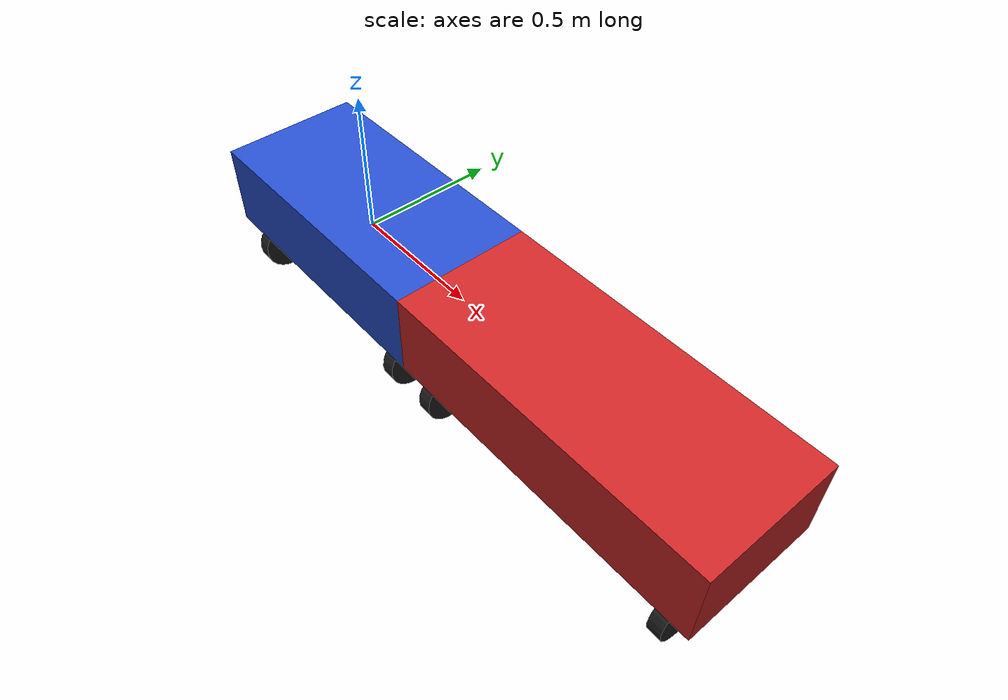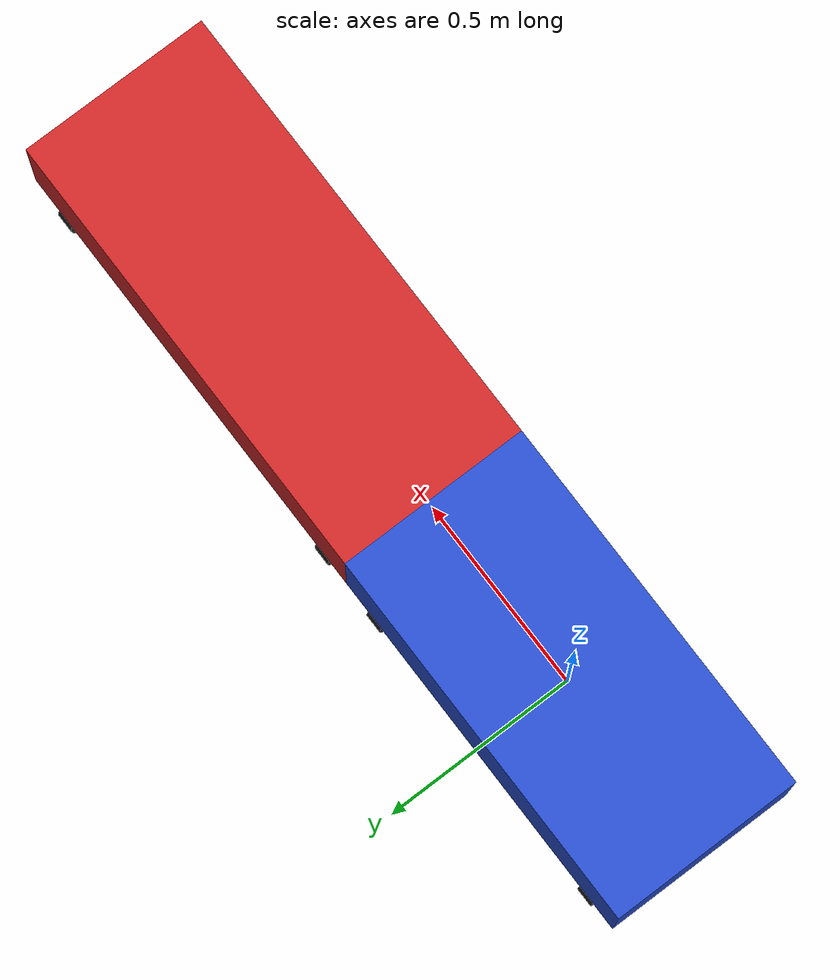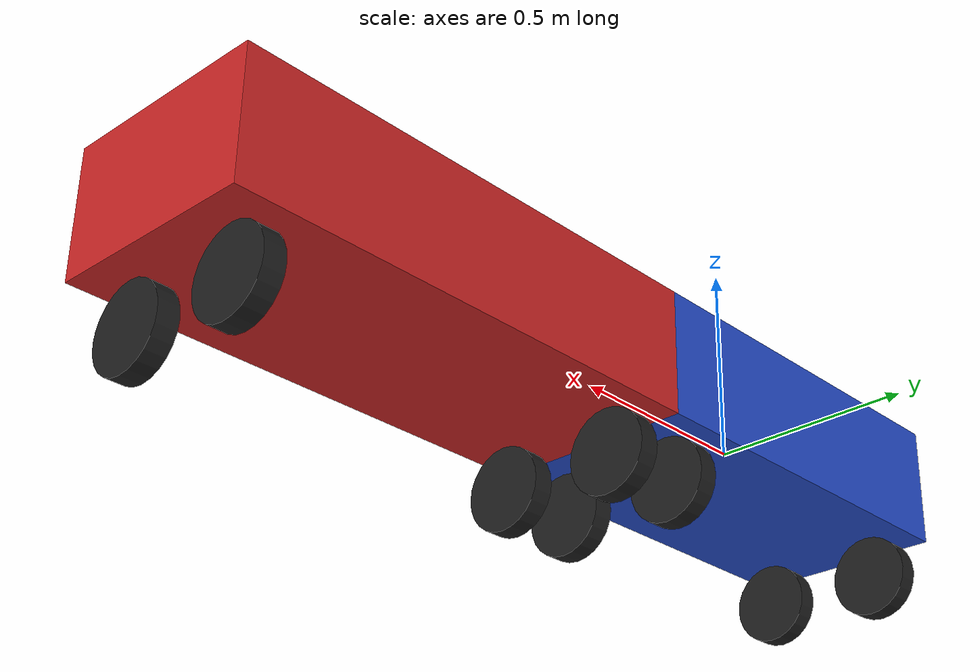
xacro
<?xml version="1.0"?>
<robot name="car_with_trailer" xmlns:xacro="http://www.ros.org/wiki/xacro">
  <xacro:property name="car_length" value="1.0"/>
  <xacro:property name="car_width" value="0.5"/>
  <xacro:property name="car_height" value="0.3"/>
  <xacro:property name="wheel_radius" value="0.1"/>
  <xacro:property name="trailer_length" value="${car_length * 1.2}"/>
  <xacro:property name="trailer_width" value="${car_width}"/>
  <xacro:property name="trailer_height" value="${car_height}"/>

  <!-- Car -->
  <link name="car_body">
    <visual>
      <geometry>
        <box size="${car_length} ${car_width} ${car_height}"/>
      </geometry>
      <material name="blue"/>
    </visual>
    <collision>
      <geometry>
        <box size="${car_length} ${car_width} ${car_height}"/>
      </geometry>
    </collision>
    <inertial>
      <mass value="10.0"/>
      <origin xyz="0 0 0"/>
      <inertia ixx="0.1" ixy="0" ixz="0" iyy="0.1" iyz="0" izz="0.1"/>
    </inertial>
  </link>

  <!-- Car Wheels -->
  <xacro:macro name="wheel" params="name x y">
    <link name="${name}">
      <visual>
        <geometry>
          <cylinder radius="${wheel_radius}" length="0.05"/>
        </geometry>
        <material name="black"/>
      </visual>
      <collision>
        <geometry>
          <cylinder radius="${wheel_radius}" length="0.05"/>
        </geometry>
      </collision>
      <inertial>
        <mass value="1.0"/>
        <origin xyz="0 0 0"/>
        <inertia ixx="0.01" ixy="0" ixz="0" iyy="0.01" iyz="0" izz="0.01"/>
      </inertial>
    </link>
    <joint name="${name}_joint" type="continuous">
      <parent link="car_body"/>
      <child link="${name}"/>
      <origin xyz="${x} ${y} -${car_height / 2 + wheel_radius}" rpy="0 1.5708 0"/>
      <axis xyz="0 1 0"/>
    </joint>
  </xacro:macro>

  <!-- Define Car Wheels -->
  <xacro:wheel name="front_left_wheel" x="${car_length / 2 - wheel_radius}" y="${car_width / 2 - wheel_radius}"/>
  <xacro:wheel name="front_right_wheel" x="${car_length / 2 - wheel_radius}" y="-${car_width / 2 - wheel_radius}"/>
  <xacro:wheel name="rear_left_wheel" x="-${car_length / 2 - wheel_radius}" y="${car_width / 2 - wheel_radius}"/>
  <xacro:wheel name="rear_right_wheel" x="-${car_length / 2 - wheel_radius}" y="-${car_width / 2 - wheel_radius}"/>

  <!-- Trailer -->
  <link name="trailer_body">
    <visual>
      <geometry>
        <box size="${trailer_length} ${trailer_width} ${trailer_height}"/>
      </geometry>
      <material name="red"/>
    </visual>
    <collision>
      <geometry>
        <box size="${trailer_length} ${trailer_width} ${trailer_height}"/>
      </geometry>
    </collision>
    <inertial>
      <mass value="12.0"/>
      <origin xyz="0 0 0"/>
      <inertia ixx="0.12" ixy="0" ixz="0" iyy="0.12" iyz="0" izz="0.12"/>
    </inertial>
  </link>

  <!-- Trailer Wheels -->
  <xacro:macro name="trailer_wheel" params="name x y">
    <link name="${name}">
      <visual>
        <geometry>
          <cylinder radius="${wheel_radius}" length="0.05"/>
        </geometry>
        <material name="black"/>
      </visual>
      <collision>
        <geometry>
          <cylinder radius="${wheel_radius}" length="0.05"/>
        </geometry>
      </collision>
      <inertial>
        <mass value="1.0"/>
        <origin xyz="0 0 0"/>
        <inertia ixx="0.01" ixy="0" ixz="0" iyy="0.01" iyz="0" izz="0.01"/>
      </inertial>
    </link>
    <joint name="${name}_joint" type="continuous">
      <parent link="trailer_body"/>
      <child link="${name}"/>
      <origin xyz="${x} ${y} -${trailer_height / 2 + wheel_radius}" rpy="0 1.5708 0"/>
      <axis xyz="0 1 0"/>
    </joint>
  </xacro:macro>

  <!-- Define Trailer Wheels -->
  <xacro:trailer_wheel name="trailer_front_left_wheel" x="${trailer_length / 2 - wheel_radius}" y="${trailer_width / 2 - wheel_radius}"/>
  <xacro:trailer_wheel name="trailer_front_right_wheel" x="${trailer_length / 2 - wheel_radius}" y="-${trailer_width / 2 - wheel_radius}"/>
  <xacro:trailer_wheel name="trailer_rear_left_wheel" x="-${trailer_length / 2 - wheel_radius}" y="${trailer_width / 2 - wheel_radius}"/>
  <xacro:trailer_wheel name="trailer_rear_right_wheel" x="-${trailer_length / 2 - wheel_radius}" y="-${trailer_width / 2 - wheel_radius}"/>

  <!-- Joint between Car and Trailer -->
  <joint name="car_to_trailer_joint" type="fixed">
    <parent link="car_body"/>
    <child link="trailer_body"/>
    <origin xyz="${car_length / 2 + trailer_length / 2} 0 0"/>
  </joint>
</robot>
